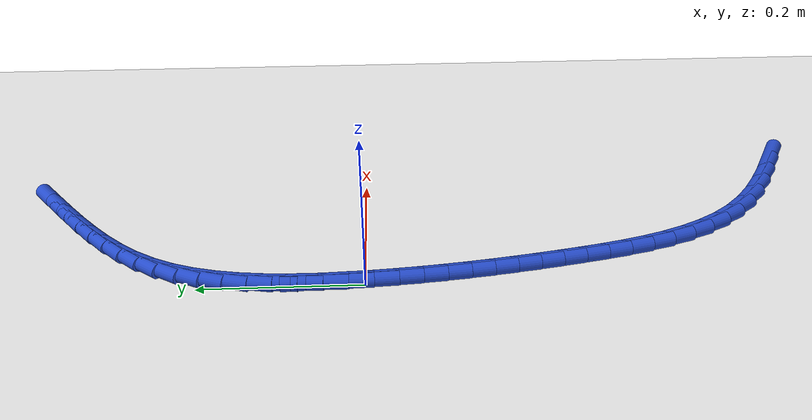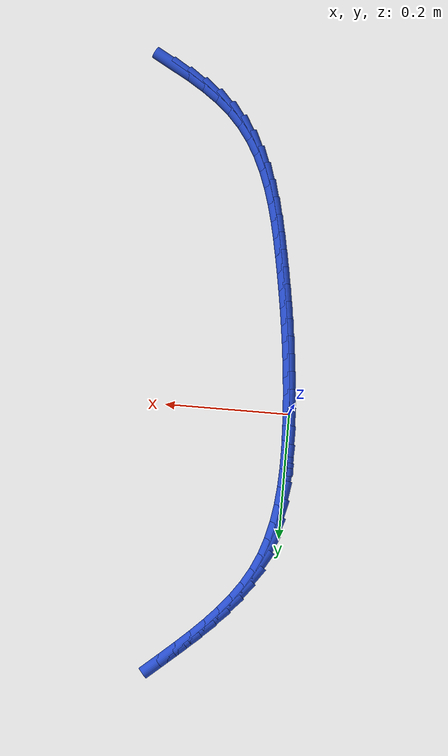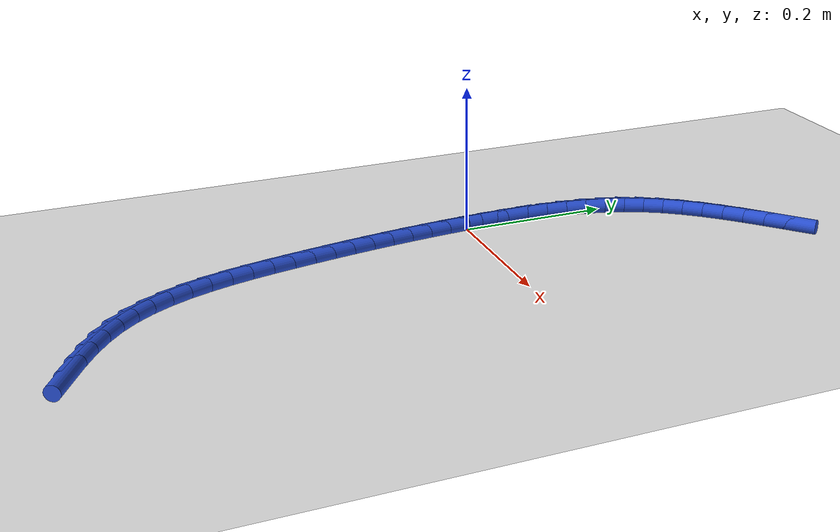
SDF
<sdf version="1.6">
 <world name="default">
  <model name="ground_plane">
   <static>1</static>
   <link name="link">
    <collision name="collision">
     <geometry><plane><normal>0 0 1</normal><size>100 100</size></plane></geometry>
     <surface><friction><ode><mu>100</mu><mu2>50</mu2></ode></friction></surface>
    </collision>
    <visual name="visual">
     <cast_shadows>0</cast_shadows>
     <geometry><plane><normal>0 0 1</normal><size>100 100</size></plane></geometry>
     <material>
      <script><uri>file://media/materials/scripts/gazebo.material</uri><name>Gazebo/WhiteGlow</name></script>
     </material>
    </visual>
   </link>
  </model>
  <model name="line">
   <link name="link_0">
    <pose>1.5016200088924236e-17 8.326672684688674e-17 0.01 0 1.57 -1.5213581371606009</pose>
    <collision name="collision">
     <geometry><cylinder><radius>0.01</radius><length>0.08</length></cylinder></geometry>
    </collision>
    <visual name="visual">
     <material>
      <script><name>Gazebo/Blue</name><uri>file://media/materials/scripts/gazebo.material</uri></script>
     </material>
     <geometry><cylinder><radius>0.01</radius><length>0.08</length></cylinder></geometry>
    </visual>
   </link>
   <link name="link_1">
    <pose>-0.001450392091105295 0.029313578391075498 0.01 0 1.57 -1.5459850343110553</pose>
    <collision name="collision">
     <geometry><cylinder><radius>0.01</radius><length>0.08</length></cylinder></geometry>
    </collision>
    <visual name="visual">
     <material>
      <script><name>Gazebo/Blue</name><uri>file://media/materials/scripts/gazebo.material</uri></script>
     </material>
     <geometry><cylinder><radius>0.01</radius><length>0.08</length></cylinder></geometry>
    </visual>
   </link>
   <link name="link_2">
    <pose>-0.0021833481796962335 0.05884874590597099 0.01 0 1.57 1.5627188708161428</pose>
    <collision name="collision">
     <geometry><cylinder><radius>0.01</radius><length>0.08</length></cylinder></geometry>
    </collision>
    <visual name="visual">
     <material>
      <script><name>Gazebo/Blue</name><uri>file://media/materials/scripts/gazebo.material</uri></script>
     </material>
     <geometry><cylinder><radius>0.01</radius><length>0.08</length></cylinder></geometry>
    </visual>
   </link>
   <link name="link_3">
    <pose>-0.0019446907877343292 0.08839421197140855 0.01 0 1.57 1.520932273999409</pose>
    <collision name="collision">
     <geometry><cylinder><radius>0.01</radius><length>0.08</length></cylinder></geometry>
    </collision>
    <visual name="visual">
     <material>
      <script><name>Gazebo/Blue</name><uri>file://media/materials/scripts/gazebo.material</uri></script>
     </material>
     <geometry><cylinder><radius>0.01</radius><length>0.08</length></cylinder></geometry>
    </visual>
   </link>
   <link name="link_4">
    <pose>-0.00048024243718110607 0.1177386860141102 0.01 0 1.57 1.4693759299298257</pose>
    <collision name="collision">
     <geometry><cylinder><radius>0.01</radius><length>0.08</length></cylinder></geometry>
    </collision>
    <visual name="visual">
     <material>
      <script><name>Gazebo/Blue</name><uri>file://media/materials/scripts/gazebo.material</uri></script>
     </material>
     <geometry><cylinder><radius>0.01</radius><length>0.08</length></cylinder></geometry>
    </visual>
   </link>
   <link name="link_5">
    <pose>0.002464174350001914 0.14667087746079793 0.01 0 1.57 1.4070069661162767</pose>
    <collision name="collision">
     <geometry><cylinder><radius>0.01</radius><length>0.08</length></cylinder></geometry>
    </collision>
    <visual name="visual">
     <material>
      <script><name>Gazebo/Blue</name><uri>file://media/materials/scripts/gazebo.material</uri></script>
     </material>
     <geometry><cylinder><radius>0.01</radius><length>0.08</length></cylinder></geometry>
    </visual>
   </link>
   <link name="link_6">
    <pose>0.007142737051853204 0.17497949573819366 0.01 0 1.57 1.3327341369886345</pose>
    <collision name="collision">
     <geometry><cylinder><radius>0.01</radius><length>0.08</length></cylinder></geometry>
    </collision>
    <visual name="visual">
     <material>
      <script><name>Gazebo/Blue</name><uri>file://media/materials/scripts/gazebo.material</uri></script>
     </material>
     <geometry><cylinder><radius>0.01</radius><length>0.08</length></cylinder></geometry>
    </visual>
   </link>
   <link name="link_7">
    <pose>0.013809623146411236 0.2024532502730194 0.01 0 1.57 1.2456377662991511</pose>
    <collision name="collision">
     <geometry><cylinder><radius>0.01</radius><length>0.08</length></cylinder></geometry>
    </collision>
    <visual name="visual">
     <material>
      <script><name>Gazebo/Blue</name><uri>file://media/materials/scripts/gazebo.material</uri></script>
     </material>
     <geometry><cylinder><radius>0.01</radius><length>0.08</length></cylinder></geometry>
    </visual>
   </link>
   <link name="link_8">
    <pose>0.022719010111714493 0.2288808504919972 0.01 0 1.57 1.1453633010345605</pose>
    <collision name="collision">
     <geometry><cylinder><radius>0.01</radius><length>0.08</length></cylinder></geometry>
    </collision>
    <visual name="visual">
     <material>
      <script><name>Gazebo/Blue</name><uri>file://media/materials/scripts/gazebo.material</uri></script>
     </material>
     <geometry><cylinder><radius>0.01</radius><length>0.08</length></cylinder></geometry>
    </visual>
   </link>
   <link name="link_9">
    <pose>0.03412404378283779 0.2540516921947441 0.01 0 1.57 1.0401623220612952</pose>
    <collision name="collision">
     <geometry><cylinder><radius>0.01</radius><length>0.08</length></cylinder></geometry>
    </collision>
    <visual name="visual">
     <material>
      <script><name>Gazebo/Blue</name><uri>file://media/materials/scripts/gazebo.material</uri></script>
     </material>
     <geometry><cylinder><radius>0.01</radius><length>0.08</length></cylinder></geometry>
    </visual>
   </link>
   <link name="link_10">
    <pose>0.04810140152827598 0.2778725792150259 0.01 0 1.57 0.9479354843157908</pose>
    <collision name="collision">
     <geometry><cylinder><radius>0.01</radius><length>0.08</length></cylinder></geometry>
    </collision>
    <visual name="visual">
     <material>
      <script><name>Gazebo/Blue</name><uri>file://media/materials/scripts/gazebo.material</uri></script>
     </material>
     <geometry><cylinder><radius>0.01</radius><length>0.08</length></cylinder></geometry>
    </visual>
   </link>
   <link name="link_11">
    <pose>0.06435299780991255 0.3004996527157634 0.01 0 1.57 0.8716488008830131</pose>
    <collision name="collision">
     <geometry><cylinder><radius>0.01</radius><length>0.08</length></cylinder></geometry>
    </collision>
    <visual name="visual">
     <material>
      <script><name>Gazebo/Blue</name><uri>file://media/materials/scripts/gazebo.material</uri></script>
     </material>
     <geometry><cylinder><radius>0.01</radius><length>0.08</length></cylinder></geometry>
    </visual>
   </link>
   <link name="link_12">
    <pose>0.08253285347012444 0.32212091845202506 0.01 0 1.57 0.81106274656525</pose>
    <collision name="collision">
     <geometry><cylinder><radius>0.01</radius><length>0.08</length></cylinder></geometry>
    </collision>
    <visual name="visual">
     <material>
      <script><name>Gazebo/Blue</name><uri>file://media/materials/scripts/gazebo.material</uri></script>
     </material>
     <geometry><cylinder><radius>0.01</radius><length>0.08</length></cylinder></geometry>
    </visual>
   </link>
   <link name="link_13">
    <pose>0.1022949893512886 0.3429243821788796 0.01 0 1.57 0.7653686024575431</pose>
    <collision name="collision">
     <geometry><cylinder><radius>0.01</radius><length>0.08</length></cylinder></geometry>
    </collision>
    <visual name="visual">
     <material>
      <script><name>Gazebo/Blue</name><uri>file://media/materials/scripts/gazebo.material</uri></script>
     </material>
     <geometry><cylinder><radius>0.01</radius><length>0.08</length></cylinder></geometry>
    </visual>
   </link>
   <link name="link_14">
    <pose>0.12329342629578185 0.3630980496513956 0.01 0 1.57 0.7336220642174771</pose>
    <collision name="collision">
     <geometry><cylinder><radius>0.01</radius><length>0.08</length></cylinder></geometry>
    </collision>
    <visual name="visual">
     <material>
      <script><name>Gazebo/Blue</name><uri>file://media/materials/scripts/gazebo.material</uri></script>
     </material>
     <geometry><cylinder><radius>0.01</radius><length>0.08</length></cylinder></geometry>
    </visual>
   </link>
   <link name="link_15">
    <pose>0.1451821851459812 0.3828299266246413 0.01 0 1.57 0.71500820200426</pose>
    <collision name="collision">
     <geometry><cylinder><radius>0.01</radius><length>0.08</length></cylinder></geometry>
    </collision>
    <visual name="visual">
     <material>
      <script><name>Gazebo/Blue</name><uri>file://media/materials/scripts/gazebo.material</uri></script>
     </material>
     <geometry><cylinder><radius>0.01</radius><length>0.08</length></cylinder></geometry>
    </visual>
   </link>
   <link name="link_16">
    <pose>0.16761528674426357 0.4023080188536857 0.01 0 1.57 0.7089805959570279</pose>
    <collision name="collision">
     <geometry><cylinder><radius>0.01</radius><length>0.08</length></cylinder></geometry>
    </collision>
    <visual name="visual">
     <material>
      <script><name>Gazebo/Blue</name><uri>file://media/materials/scripts/gazebo.material</uri></script>
     </material>
     <geometry><cylinder><radius>0.01</radius><length>0.08</length></cylinder></geometry>
    </visual>
   </link>
   <link name="link_228">
    <pose>0.23214843922837802 -0.5596645598675407 0.01 0 1.57 -0.5134853247719128</pose>
    <collision name="collision">
     <geometry><cylinder><radius>0.01</radius><length>0.08</length></cylinder></geometry>
    </collision>
    <visual name="visual">
     <material>
      <script><name>Gazebo/Blue</name><uri>file://media/materials/scripts/gazebo.material</uri></script>
     </material>
     <geometry><cylinder><radius>0.01</radius><length>0.08</length></cylinder></geometry>
    </visual>
   </link>
   <link name="link_229">
    <pose>0.20481125363396824 -0.5442479319289759 0.01 0 1.57 -0.5628944123983377</pose>
    <collision name="collision">
     <geometry><cylinder><radius>0.01</radius><length>0.08</length></cylinder></geometry>
    </collision>
    <visual name="visual">
     <material>
      <script><name>Gazebo/Blue</name><uri>file://media/materials/scripts/gazebo.material</uri></script>
     </material>
     <geometry><cylinder><radius>0.01</radius><length>0.08</length></cylinder></geometry>
    </visual>
   </link>
   <link name="link_230">
    <pose>0.178771619534421 -0.5278172096853446 0.01 0 1.57 -0.6310797092003605</pose>
    <collision name="collision">
     <geometry><cylinder><radius>0.01</radius><length>0.08</length></cylinder></geometry>
    </collision>
    <visual name="visual">
     <material>
      <script><name>Gazebo/Blue</name><uri>file://media/materials/scripts/gazebo.material</uri></script>
     </material>
     <geometry><cylinder><radius>0.01</radius><length>0.08</length></cylinder></geometry>
    </visual>
   </link>
   <link name="link_231">
    <pose>0.1544999697349952 -0.5100802228528865 0.01 0 1.57 -0.7202764838535995</pose>
    <collision name="collision">
     <geometry><cylinder><radius>0.01</radius><length>0.08</length></cylinder></geometry>
    </collision>
    <visual name="visual">
     <material>
      <script><name>Gazebo/Blue</name><uri>file://media/materials/scripts/gazebo.material</uri></script>
     </material>
     <geometry><cylinder><radius>0.01</radius><length>0.08</length></cylinder></geometry>
    </visual>
   </link>
   <link name="link_232">
    <pose>0.1324667370409501 -0.4907448011478417 0.01 0 1.57 -0.8312775358183374</pose>
    <collision name="collision">
     <geometry><cylinder><radius>0.01</radius><length>0.08</length></cylinder></geometry>
    </collision>
    <visual name="visual">
     <material>
      <script><name>Gazebo/Blue</name><uri>file://media/materials/scripts/gazebo.material</uri></script>
     </material>
     <geometry><cylinder><radius>0.01</radius><length>0.08</length></cylinder></geometry>
    </visual>
   </link>
   <link name="link_233">
    <pose>0.11311944378499984 -0.46953548967139014 0.01 0 1.57 -0.9467918088736449</pose>
    <collision name="collision">
     <geometry><cylinder><radius>0.01</radius><length>0.08</length></cylinder></geometry>
    </collision>
    <visual name="visual">
     <material>
      <script><name>Gazebo/Blue</name><uri>file://media/materials/scripts/gazebo.material</uri></script>
     </material>
     <geometry><cylinder><radius>0.01</radius><length>0.08</length></cylinder></geometry>
    </visual>
   </link>
   <link name="link_234">
    <pose>0.0965097897589829 -0.446465623994895 0.01 0 1.57 -1.0499505173974397</pose>
    <collision name="collision">
     <geometry><cylinder><radius>0.01</radius><length>0.08</length></cylinder></geometry>
    </collision>
    <visual name="visual">
     <material>
      <script><name>Gazebo/Blue</name><uri>file://media/materials/scripts/gazebo.material</uri></script>
     </material>
     <geometry><cylinder><radius>0.01</radius><length>0.08</length></cylinder></geometry>
    </visual>
   </link>
   <link name="link_235">
    <pose>0.08235515365072789 -0.42179245896881434 0.01 0 1.57 -1.138787659205265</pose>
    <collision name="collision">
     <geometry><cylinder><radius>0.01</radius><length>0.08</length></cylinder></geometry>
    </collision>
    <visual name="visual">
     <material>
      <script><name>Gazebo/Blue</name><uri>file://media/materials/scripts/gazebo.material</uri></script>
     </material>
     <geometry><cylinder><radius>0.01</radius><length>0.08</length></cylinder></geometry>
    </visual>
   </link>
   <link name="link_236">
    <pose>0.0703624140176593 -0.39578091029482854 0.01 0 1.57 -1.2130915573416199</pose>
    <collision name="collision">
     <geometry><cylinder><radius>0.01</radius><length>0.08</length></cylinder></geometry>
    </collision>
    <visual name="visual">
     <material>
      <script><name>Gazebo/Blue</name><uri>file://media/materials/scripts/gazebo.material</uri></script>
     </material>
     <geometry><cylinder><radius>0.01</radius><length>0.08</length></cylinder></geometry>
    </visual>
   </link>
   <link name="link_237">
    <pose>0.060238449417201766 -0.36869589367461864 0.01 0 1.57 -1.2734219448447353</pose>
    <collision name="collision">
     <geometry><cylinder><radius>0.01</radius><length>0.08</length></cylinder></geometry>
    </collision>
    <visual name="visual">
     <material>
      <script><name>Gazebo/Blue</name><uri>file://media/materials/scripts/gazebo.material</uri></script>
     </material>
     <geometry><cylinder><radius>0.01</radius><length>0.08</length></cylinder></geometry>
    </visual>
   </link>
   <link name="link_238">
    <pose>0.05169013840677983 -0.3408023248098653 0.01 0 1.57 -1.3206455236087151</pose>
    <collision name="collision">
     <geometry><cylinder><radius>0.01</radius><length>0.08</length></cylinder></geometry>
    </collision>
    <visual name="visual">
     <material>
      <script><name>Gazebo/Blue</name><uri>file://media/materials/scripts/gazebo.material</uri></script>
     </material>
     <geometry><cylinder><radius>0.01</radius><length>0.08</length></cylinder></geometry>
    </visual>
   </link>
   <link name="link_239">
    <pose>0.04442435954381805 -0.31236511940224915 0.01 0 1.57 -1.3556128013596747</pose>
    <collision name="collision">
     <geometry><cylinder><radius>0.01</radius><length>0.08</length></cylinder></geometry>
    </collision>
    <visual name="visual">
     <material>
      <script><name>Gazebo/Blue</name><uri>file://media/materials/scripts/gazebo.material</uri></script>
     </material>
     <geometry><cylinder><radius>0.01</radius><length>0.08</length></cylinder></geometry>
    </visual>
   </link>
   <link name="link_240">
    <pose>0.038147991385741195 -0.2836491931534519 0.01 0 1.57 -1.3789581977357837</pose>
    <collision name="collision">
     <geometry><cylinder><radius>0.01</radius><length>0.08</length></cylinder></geometry>
    </collision>
    <visual name="visual">
     <material>
      <script><name>Gazebo/Blue</name><uri>file://media/materials/scripts/gazebo.material</uri></script>
     </material>
     <geometry><cylinder><radius>0.01</radius><length>0.08</length></cylinder></geometry>
    </visual>
   </link>
   <link name="link_241">
    <pose>0.03256791248997346 -0.25491946176515257 0.01 0 1.57 -1.3919823328217307</pose>
    <collision name="collision">
     <geometry><cylinder><radius>0.01</radius><length>0.08</length></cylinder></geometry>
    </collision>
    <visual name="visual">
     <material>
      <script><name>Gazebo/Blue</name><uri>file://media/materials/scripts/gazebo.material</uri></script>
     </material>
     <geometry><cylinder><radius>0.01</radius><length>0.08</length></cylinder></geometry>
    </visual>
   </link>
   <link name="link_242">
    <pose>0.027415518845733376 -0.226412961014219 0.01 0 1.57 -1.402525862920639</pose>
    <collision name="collision">
     <geometry><cylinder><radius>0.01</radius><length>0.08</length></cylinder></geometry>
    </collision>
    <visual name="visual">
     <material>
      <script><name>Gazebo/Blue</name><uri>file://media/materials/scripts/gazebo.material</uri></script>
     </material>
     <geometry><cylinder><radius>0.01</radius><length>0.08</length></cylinder></geometry>
    </visual>
   </link>
   <link name="link_243">
    <pose>0.0226140529574189 -0.19814856898204752 0.01 0 1.57 -1.4142240031626057</pose>
    <collision name="collision">
     <geometry><cylinder><radius>0.01</radius><length>0.08</length></cylinder></geometry>
    </collision>
    <visual name="visual">
     <material>
      <script><name>Gazebo/Blue</name><uri>file://media/materials/scripts/gazebo.material</uri></script>
     </material>
     <geometry><cylinder><radius>0.01</radius><length>0.08</length></cylinder></geometry>
    </visual>
   </link>
   <link name="link_244">
    <pose>0.018177094072353184 -0.17004243759087287 0.01 0 1.57 -1.4270214848976075</pose>
    <collision name="collision">
     <geometry><cylinder><radius>0.01</radius><length>0.08</length></cylinder></geometry>
    </collision>
    <visual name="visual">
     <material>
      <script><name>Gazebo/Blue</name><uri>file://media/materials/scripts/gazebo.material</uri></script>
     </material>
     <geometry><cylinder><radius>0.01</radius><length>0.08</length></cylinder></geometry>
    </visual>
   </link>
   <link name="link_245">
    <pose>0.014118749550711542 -0.14201011822096726 0.01 0 1.57 -1.4408186972435302</pose>
    <collision name="collision">
     <geometry><cylinder><radius>0.01</radius><length>0.08</length></cylinder></geometry>
    </collision>
    <visual name="visual">
     <material>
      <script><name>Gazebo/Blue</name><uri>file://media/materials/scripts/gazebo.material</uri></script>
     </material>
     <geometry><cylinder><radius>0.01</radius><length>0.08</length></cylinder></geometry>
    </visual>
   </link>
   <link name="link_246">
    <pose>0.01045312675266927 -0.1139671622526029 0.01 0 1.57 -1.4554954866209147</pose>
    <collision name="collision">
     <geometry><cylinder><radius>0.01</radius><length>0.08</length></cylinder></geometry>
    </collision>
    <visual name="visual">
     <material>
      <script><name>Gazebo/Blue</name><uri>file://media/materials/scripts/gazebo.material</uri></script>
     </material>
     <geometry><cylinder><radius>0.01</radius><length>0.08</length></cylinder></geometry>
    </visual>
   </link>
   <link name="link_247">
    <pose>0.00719433303840168 -0.08582912106605181 0.01 0 1.57 -1.4709144058571189</pose>
    <collision name="collision">
     <geometry><cylinder><radius>0.01</radius><length>0.08</length></cylinder></geometry>
    </collision>
    <visual name="visual">
     <material>
      <script><name>Gazebo/Blue</name><uri>file://media/materials/scripts/gazebo.material</uri></script>
     </material>
     <geometry><cylinder><radius>0.01</radius><length>0.08</length></cylinder></geometry>
    </visual>
   </link>
   <link name="link_248">
    <pose>0.004356475768084069 -0.05751154604158619 0.01 0 1.57 -1.4869248761049307</pose>
    <collision name="collision">
     <geometry><cylinder><radius>0.01</radius><length>0.08</length></cylinder></geometry>
    </collision>
    <visual name="visual">
     <material>
      <script><name>Gazebo/Blue</name><uri>file://media/materials/scripts/gazebo.material</uri></script>
     </material>
     <geometry><cylinder><radius>0.01</radius><length>0.08</length></cylinder></geometry>
    </visual>
   </link>
   <link name="link_249">
    <pose>0.001953662301891745 -0.028929988559478148 0.01 0 1.57 -1.5033680050152218</pose>
    <collision name="collision">
     <geometry><cylinder><radius>0.01</radius><length>0.08</length></cylinder></geometry>
    </collision>
    <visual name="visual">
     <material>
      <script><name>Gazebo/Blue</name><uri>file://media/materials/scripts/gazebo.material</uri></script>
     </material>
     <geometry><cylinder><radius>0.01</radius><length>0.08</length></cylinder></geometry>
    </visual>
   </link>
   <link name="link_250">
    <pose>1.214306433183765e-17 1.3877787807814457e-16 0.01 0 1.57 -1.5200817376223958</pose>
    <collision name="collision">
     <geometry><cylinder><radius>0.01</radius><length>0.08</length></cylinder></geometry>
    </collision>
    <visual name="visual">
     <material>
      <script><name>Gazebo/Blue</name><uri>file://media/materials/scripts/gazebo.material</uri></script>
     </material>
     <geometry><cylinder><radius>0.01</radius><length>0.08</length></cylinder></geometry>
    </visual>
   </link>
   <link name="link_251">
    <pose>-0.0014904037774158255 0.029362868256576538 0.01 0 1.57 -1.5369059868407131</pose>
    <collision name="collision">
     <geometry><cylinder><radius>0.01</radius><length>0.08</length></cylinder></geometry>
    </collision>
    <visual name="visual">
     <material>
      <script><name>Gazebo/Blue</name><uri>file://media/materials/scripts/gazebo.material</uri></script>
     </material>
     <geometry><cylinder><radius>0.01</radius><length>0.08</length></cylinder></geometry>
    </visual>
   </link>
   <link name="link_252">
    <pose>-0.002503441670180466 0.05924306482997894 0.01 0 1.57 -1.528564325980415</pose>
    <collision name="collision">
     <geometry><cylinder><radius>0.01</radius><length>0.08</length></cylinder></geometry>
    </collision>
    <visual name="visual">
     <material>
      <script><name>Gazebo/Blue</name><uri>file://media/materials/scripts/gazebo.material</uri></script>
     </material>
     <geometry><cylinder><radius>0.01</radius><length>0.08</length></cylinder></geometry>
    </visual>
   </link>
  </model>
 </world>
</sdf>
